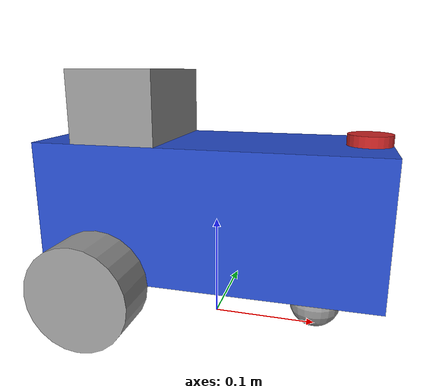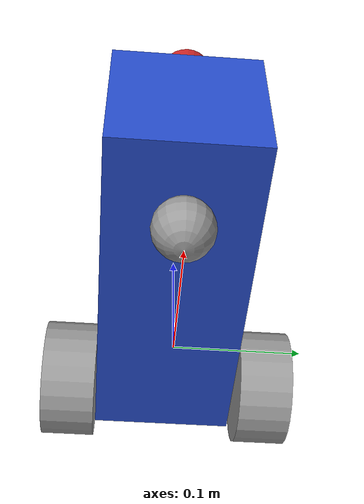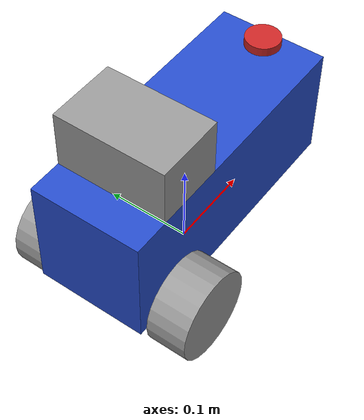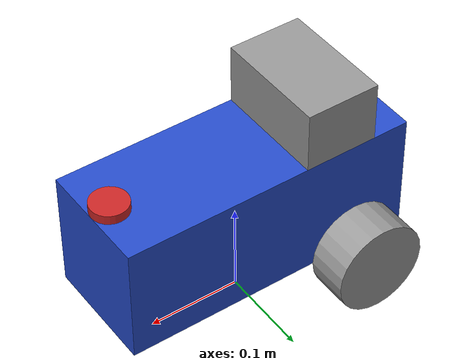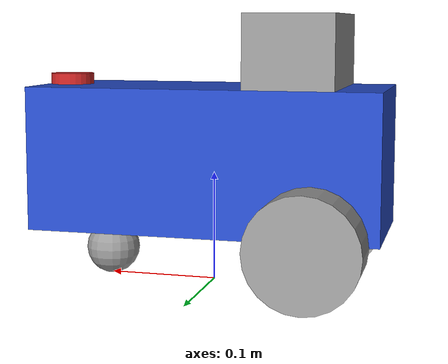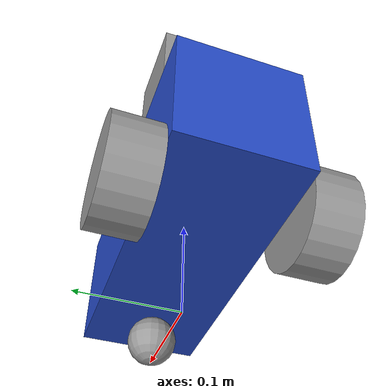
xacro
<?xml version="1.0"?>
<robot name="limo" xmlns:xacro="http://www.ros.org/wiki/xacro">

    <xacro:arg name="robot_name" default="limo_1"/>

    <xacro:include filename="common_properties.xacro" />
    <xacro:include filename="mobile_base.xacro" />
    <xacro:include filename="mobile_base_gazebo.xacro" />
    <xacro:include filename="lidar.xacro" />
    <xacro:include filename="imu.xacro" />

    <!-- call macros with specified arg -->
    <xacro:diff_plugin robot_name="$(arg robot_name)"/>
    <xacro:lidar_plugin robot_name="$(arg robot_name)"/>
    <xacro:imu_plugin robot_name="$(arg robot_name)"/>

</robot>

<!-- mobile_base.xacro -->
<robot xmlns:xacro="http://www.ros.org/wiki/xacro">

    <xacro:property name="base_length" value="0.318" />
    <xacro:property name="base_width" value="0.125" />
    <xacro:property name="base_height" value="0.130" />
    <xacro:property name="wheel_radius" value="0.05" />
    <xacro:property name="wheel_length" value="0.045" />
    <xacro:property name="wheelbase" value="0.2" />

    <link name="base_footprint" />

    <link name="base_link">
        <visual>
            <geometry>
                <box size="${base_length} ${base_width} ${base_height}" />
            </geometry>
            <origin xyz="0 0 ${base_height / 2.0}" rpy="0 0 0" />
            <material name="blue" />
        </visual>
        <collision>
            <geometry>
                <box size="${base_length} ${base_width} ${base_height}" />
            </geometry>
            <origin xyz="0 0 ${base_height / 2.0}" rpy="0 0 0" />
        </collision>
        <xacro:box_inertia m="5.0" l="${2*base_length}" w="${2*base_width}" h="${2*base_height}"
                           xyz="0 0 ${base_height / 2.0}" rpy="0 0 0" />
    </link>

    <link name="monitor_link">
        <visual>
            <geometry>
                <box size="${base_length / 4.0} ${base_width} ${base_height / 2.0}" />
            </geometry>
            <origin xyz="0 0 0" rpy="0 0 0" />
            <material name="grey" />
        </visual>
        <collision>
            <geometry>
                <box size="${base_length / 4.0} ${base_width} ${base_height / 2.0}" />
            </geometry>
            <origin xyz="0 0 0" rpy="0 0 0" />
        </collision>
        <xacro:box_inertia
            m="0.1"
            l="${base_length / 4.0}"
            w="${base_width}"
            h="${base_height / 2.0}"
            xyz="0 0 0"
            rpy="0 0 0" />
    </link>

    <joint name="base_monitor_joint" type="fixed">
        <parent link="base_link" />
        <child link="monitor_link" />
        <origin xyz="${-base_length / 4.0} 0 ${base_height * 1.25}" rpy="0 0 0" />
    </joint>

    <xacro:macro name="wheel_link" params="prefix">
        <link name="${prefix}_wheel_link">
            <visual>
                <geometry>
                    <cylinder radius="${wheel_radius}" length="${wheel_length}" />
                </geometry>
                <origin xyz="0 0 0" rpy="${pi / 2.0} 0 0" />
                <material name="grey" />
            </visual>
            <collision>
                <geometry>
                    <cylinder radius="${wheel_radius}" length="${wheel_length}" />
                </geometry>
                <origin xyz="0 0 0" rpy="${pi / 2.0} 0 0" />
            </collision>
            <xacro:cylinder_inertia m="1.0" r="${2*wheel_radius}" h="${2*wheel_length}"
                                    xyz="0 0 0" rpy="${pi / 2.0} 0 0" />
        </link>
    </xacro:macro>

    <xacro:wheel_link prefix="rear_right" />
    <xacro:wheel_link prefix="rear_left" />

    <link name="caster_wheel_link">
        <visual>
            <geometry>
                <sphere radius="${wheel_radius / 2.0}" />
            </geometry>
            <origin xyz="0 0 0" rpy="0 0 0" />
            <material name="grey" />
        </visual>
        <collision>
            <geometry>
                <sphere radius="${wheel_radius / 2.0}" />
            </geometry>
            <origin xyz="0 0 0" rpy="0 0 0" />
        </collision>
        <xacro:sphere_inertia m="0.5" r="${2*wheel_radius / 2.0}"
                              xyz="0 0 0" rpy="0 0 0" />
    </link>

    <joint name="base_joint" type="fixed">
        <parent link="base_footprint" />
        <child link="base_link" />
        <origin xyz="0 0 ${wheel_radius}" rpy="0 0 0"/>
    </joint>

    <joint name="base_rear_right_wheel_joint" type="continuous">
        <parent link="base_link" />
        <child link="rear_right_wheel_link" />
        <origin xyz="${-wheelbase / 2.0} ${-(base_width + wheel_length) / 2.0} 0" rpy="0 0 0" />
        <axis xyz="0 1 0" />
    </joint>

    <joint name="base_rear_left_wheel_joint" type="continuous">
        <parent link="base_link" />
        <child link="rear_left_wheel_link" />
        <origin xyz="${-wheelbase / 2.0} ${(base_width + wheel_length) / 2.0} 0" rpy="0 0 0" />
        <axis xyz="0 1 0" />
    </joint>

    <joint name="base_caster_wheel_joint" type="fixed">
        <parent link="base_link" />
        <child link="caster_wheel_link" />
        <origin xyz="${wheelbase / 2.0} 0 ${-wheel_radius / 2.0}" rpy="0 0 0" />
    </joint>

</robot>

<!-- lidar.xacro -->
<robot xmlns:xacro="http://www.ros.org/wiki/xacro">

    <xacro:property name="lidar_radius" value="0.02" />
    <xacro:property name="lidar_length" value="0.01" />

    <xacro:macro name="lidar_plugin" params="robot_name">
        <link name="lidar_link">
            <visual>
                <geometry>
                    <cylinder radius="${lidar_radius}" length="${lidar_length}" />
                </geometry>
                <material name="red" />
            </visual>
            <collision>
                <geometry>
                    <cylinder radius="${lidar_radius}" length="${lidar_length}" />
                </geometry>
            </collision>
            <xacro:cylinder_inertia m="0.1" r="${lidar_radius}" h="${lidar_length}" xyz="0 0 0" rpy="0 0 0" />
        </link>

        <joint name="base_lidar_joint" type="fixed">
            <parent link="base_link" />
            <child link="lidar_link" />
            <origin xyz="${base_length / 2.0 - lidar_radius} 0 ${base_height + lidar_length / 2.0}" rpy="0 0 0" />
        </joint>

        <gazebo reference="lidar_link">
            <material>Gazebo/Red</material>
            <sensor name="lidar_sensor" type="ray">
                <pose>0 0 0 0 0 0</pose>
                <always_on>true</always_on>
                <visualize>true</visualize>
                <update_rate>10.0</update_rate>
                <ray>
                    <scan>
                        <horizontal>
                            <samples>120</samples>
                            <resolution>1.000000</resolution>
                            <min_angle>-1.92</min_angle>
                            <max_angle>1.92</max_angle>
                        </horizontal>
                    </scan>
                    <range>
                        <min>0.3</min>
                        <max>15.0</max>
                        <resolution>0.015</resolution>
                    </range>
                    <noise>
                        <type>gaussian</type>
                        <mean>0.0</mean>
                        <stddev>0.01</stddev>
                    </noise>
                </ray>
                <plugin name="scan" filename="libgazebo_ros_ray_sensor.so">
                    <ros>
					    <namespace>${robot_name}</namespace>
					    <remapping>~/out:=scan</remapping>
				    </ros>
                    <output_type>sensor_msgs/LaserScan</output_type>
                    <frame_name>${robot_name}/lidar_link</frame_name>
                </plugin>
            </sensor>
        </gazebo>
    </xacro:macro>

</robot>

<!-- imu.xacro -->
<robot xmlns:xacro="http://www.ros.org/wiki/xacro">

    <xacro:property name="imu_length" value="0.001" />
    <xacro:property name="imu_width" value="0.001" />
    <xacro:property name="imu_height" value="0.001" />

    <xacro:macro name="imu_plugin" params="robot_name">
        <link name="imu_link">
            <visual>
                <geometry>
                    <box size="${imu_length} ${imu_width} ${imu_height}" />
                </geometry>
                <material name="green" />
            </visual>
            <collision>
                <geometry>
                    <box size="${imu_length} ${imu_width} ${imu_height}" />
                </geometry>
            </collision>
            <xacro:box_inertia m="0.01" l="${imu_length}" w="${imu_width}" h="${imu_height}" xyz="0 0 0" rpy="0 0 0" />
        </link>

        <joint name="base_imu_joint" type="fixed">
            <parent link="base_link" />
            <child link="imu_link" />
            <origin xyz="0 0 0" rpy="0 0 0" />
        </joint>

        <gazebo reference="imu_link">
            <material>Gazebo/Green</material>
            <sensor name="imu_sensor" type="imu">
                <pose>0 0 0 0 0 0</pose>
                <always_on>true</always_on>
                <visualize>true</visualize>
                <update_rate>100</update_rate>
                <imu>
                    <orientation>
                        <x>
                            <noise type="gaussian">
                                <mean>0.0</mean>
                                <stddev>2e-3</stddev>
                            </noise>
                        </x>
                        <y>
                            <noise type="gaussian">
                                <mean>0.0</mean>
                                <stddev>2e-3</stddev>
                            </noise>
                        </y>
                        <z>
                            <noise type="gaussian">
                                <mean>0.0</mean>
                                <stddev>2e-3</stddev>
                            </noise>
                        </z>
                    </orientation>
                    <angular_velocity>
                        <x>
                            <noise type="gaussian">
                                <mean>0.0</mean>
                                <stddev>2e-4</stddev>
                            </noise>
                        </x>
                        <y>
                            <noise type="gaussian">
                                <mean>0.0</mean>
                                <stddev>2e-4</stddev>
                            </noise>
                        </y>
                        <z>
                            <noise type="gaussian">
                                <mean>0.0</mean>
                                <stddev>2e-4</stddev>
                            </noise>
                        </z>
                    </angular_velocity>
                    <linear_acceleration>
                        <x>
                            <noise type="gaussian">
                                <mean>0.0</mean>
                                <stddev>1.7e-2</stddev>
                            </noise>
                        </x>
                        <y>
                            <noise type="gaussian">
                                <mean>0.0</mean>
                                <stddev>1.7e-2</stddev>
                            </noise>
                        </y>
                        <z>
                            <noise type="gaussian">
                                <mean>0.0</mean>
                                <stddev>1.7e-2</stddev>
                            </noise>
                        </z>
                    </linear_acceleration>
                </imu>
                <plugin name="imu" filename="libgazebo_ros_imu_sensor.so">
                    <initial_orientation_as_reference>false</initial_orientation_as_reference>
                    <ros>
                        <namespace>${robot_name}</namespace>
                        <remapping>~/out:=imu</remapping>
                    </ros>
                    <frame_name>${robot_name}/imu_link</frame_name>
                </plugin>
            </sensor>
        </gazebo>
    </xacro:macro>

</robot>
